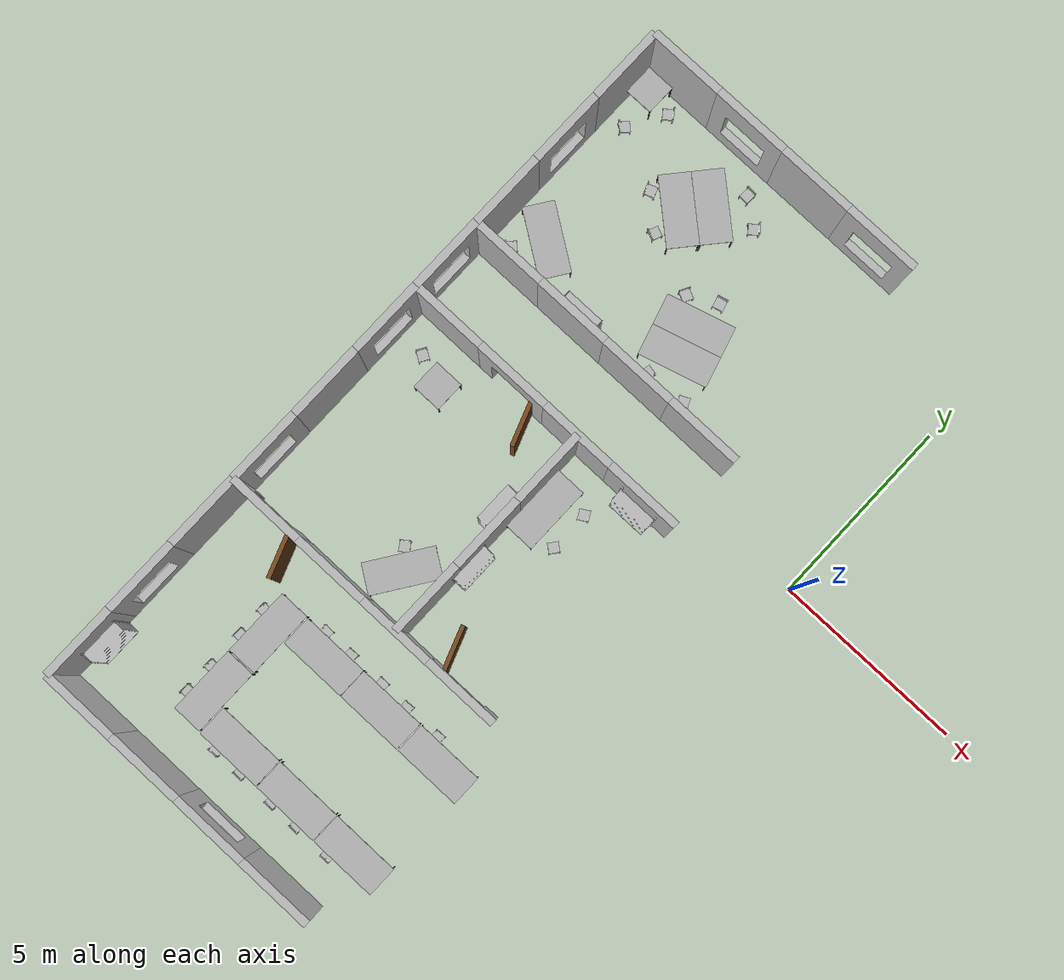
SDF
<sdf version="1.6">
 <world name="office_sim">
  <model name="Shelves.031">
   <static>1</static>
   <link name="Shelves">
    <collision name="collision">
     <geometry><mesh><uri>model://Shelves/Shelves.dae</uri></mesh></geometry>
    </collision>
    <visual name="vis">
     <cast_shadows>0</cast_shadows>
     <geometry><mesh><uri>model://Shelves/Shelves.dae</uri></mesh></geometry>
    </visual>
   </link>
   <pose>-3.96844 -1.13507 0 0 -0 0</pose>
  </model>
  <model name="Shelves.025">
   <static>1</static>
   <link name="Shelves">
    <collision name="collision">
     <geometry><mesh><uri>model://Shelves/Shelves.dae</uri></mesh></geometry>
    </collision>
    <visual name="vis">
     <cast_shadows>0</cast_shadows>
     <geometry><mesh><uri>model://Shelves/Shelves.dae</uri></mesh></geometry>
    </visual>
   </link>
   <pose>-7.96844 1.14421 0 0 -0 -3.14159</pose>
  </model>
  <model name="Shelves.016">
   <static>1</static>
   <link name="Shelves">
    <collision name="collision">
     <geometry><mesh><uri>model://Shelves/Shelves.dae</uri></mesh></geometry>
    </collision>
    <visual name="vis">
     <cast_shadows>0</cast_shadows>
     <geometry><mesh><uri>model://Shelves/Shelves.dae</uri></mesh></geometry>
    </visual>
   </link>
   <pose>-6.16844 -3.34184 0 0 -0 -1.5708</pose>
  </model>
  <model name="Shelves.010">
   <static>1</static>
   <link name="Shelves">
    <collision name="collision">
     <geometry><mesh><uri>model://Shelves/Shelves.dae</uri></mesh></geometry>
    </collision>
    <visual name="vis">
     <cast_shadows>0</cast_shadows>
     <geometry><mesh><uri>model://Shelves/Shelves.dae</uri></mesh></geometry>
    </visual>
   </link>
   <pose>-5.89665 -4.74184 0 0 -0 1.5708</pose>
  </model>
  <model name="Shelves.008">
   <static>1</static>
   <link name="Shelves">
    <collision name="collision">
     <geometry><mesh><uri>model://Shelves/Shelves.dae</uri></mesh></geometry>
    </collision>
    <visual name="vis">
     <cast_shadows>0</cast_shadows>
     <geometry><mesh><uri>model://Shelves/Shelves.dae</uri></mesh></geometry>
    </visual>
   </link>
   <pose>-10.8966 -11.7418 0 0 -0 1.5708</pose>
  </model>
  <model name="DoorOpen.008">
   <static>1</static>
   <link name="DoorOpen">
    <collision name="collision">
     <geometry><mesh><uri>model://DoorOpen/DoorOpen.dae</uri></mesh></geometry>
    </collision>
    <visual name="vis">
     <cast_shadows>0</cast_shadows>
     <geometry><mesh><uri>model://DoorOpen/DoorOpen.dae</uri></mesh></geometry>
    </visual>
   </link>
   <pose>-10 -7 0 0 -0 3.14159</pose>
  </model>
  <model name="DoorOpen.007">
   <static>1</static>
   <link name="DoorOpen">
    <collision name="collision">
     <geometry><mesh><uri>model://DoorOpen/DoorOpen.dae</uri></mesh></geometry>
    </collision>
    <visual name="vis">
     <cast_shadows>0</cast_shadows>
     <geometry><mesh><uri>model://DoorOpen/DoorOpen.dae</uri></mesh></geometry>
    </visual>
   </link>
   <pose>-8 -1 0 0 -0 3.14159</pose>
  </model>
  <model name="DoorOpen.001">
   <static>1</static>
   <link name="DoorOpen">
    <collision name="collision">
     <geometry><mesh><uri>model://DoorOpen/DoorOpen.dae</uri></mesh></geometry>
    </collision>
    <visual name="vis">
     <cast_shadows>0</cast_shadows>
     <geometry><mesh><uri>model://DoorOpen/DoorOpen.dae</uri></mesh></geometry>
    </visual>
   </link>
   <pose>-4 -7 0 0 -0 0</pose>
  </model>
  <model name="chair.076">
   <static>1</static>
   <link name="Chair">
    <collision name="collision"><geometry><mesh><uri>model://Chair/Chair.dae</uri></mesh></geometry></collision>
    <visual name="vis">
     <cast_shadows>0</cast_shadows>
     <geometry><mesh><uri>model://Chair/Chair.dae</uri></mesh></geometry>
    </visual>
   </link>
   <pose>-9.85611 6.46121 0 0 0 -0.949062</pose>
  </model>
  <model name="chair.075">
   <static>1</static>
   <link name="Chair">
    <collision name="collision"><geometry><mesh><uri>model://Chair/Chair.dae</uri></mesh></geometry></collision>
    <visual name="vis">
     <cast_shadows>0</cast_shadows>
     <geometry><mesh><uri>model://Chair/Chair.dae</uri></mesh></geometry>
    </visual>
   </link>
   <pose>-10.422 5.51803 0 0 -0 2.39536</pose>
  </model>
  <model name="chair.074">
   <static>1</static>
   <link name="Chair">
    <collision name="collision"><geometry><mesh><uri>model://Chair/Chair.dae</uri></mesh></geometry></collision>
    <visual name="vis">
     <cast_shadows>0</cast_shadows>
     <geometry><mesh><uri>model://Chair/Chair.dae</uri></mesh></geometry>
    </visual>
   </link>
   <pose>-10.422 1.51803 0 0 -0 2.39536</pose>
  </model>
  <model name="chair.073">
   <static>1</static>
   <link name="Chair">
    <collision name="collision"><geometry><mesh><uri>model://Chair/Chair.dae</uri></mesh></geometry></collision>
    <visual name="vis">
     <cast_shadows>0</cast_shadows>
     <geometry><mesh><uri>model://Chair/Chair.dae</uri></mesh></geometry>
    </visual>
   </link>
   <pose>-8.89406 4.80098 0 0 -0 1.91933</pose>
  </model>
  <model name="chair.072">
   <static>1</static>
   <link name="Chair">
    <collision name="collision"><geometry><mesh><uri>model://Chair/Chair.dae</uri></mesh></geometry></collision>
    <visual name="vis">
     <cast_shadows>0</cast_shadows>
     <geometry><mesh><uri>model://Chair/Chair.dae</uri></mesh></geometry>
    </visual>
   </link>
   <pose>-8.12065 4.10302 0 0 -0 2.75264</pose>
  </model>
  <model name="chair.071">
   <static>1</static>
   <link name="Chair">
    <collision name="collision"><geometry><mesh><uri>model://Chair/Chair.dae</uri></mesh></geometry></collision>
    <visual name="vis">
     <cast_shadows>0</cast_shadows>
     <geometry><mesh><uri>model://Chair/Chair.dae</uri></mesh></geometry>
    </visual>
   </link>
   <pose>-7.11295 6.28751 0 0 0 -0.039891</pose>
  </model>
  <model name="chair.070">
   <static>1</static>
   <link name="Chair">
    <collision name="collision"><geometry><mesh><uri>model://Chair/Chair.dae</uri></mesh></geometry></collision>
    <visual name="vis">
     <cast_shadows>0</cast_shadows>
     <geometry><mesh><uri>model://Chair/Chair.dae</uri></mesh></geometry>
    </visual>
   </link>
   <pose>-6.44881 5.78649 0 0 0 -0.873194</pose>
  </model>
  <model name="chair.069">
   <static>1</static>
   <link name="Chair">
    <collision name="collision"><geometry><mesh><uri>model://Chair/Chair.dae</uri></mesh></geometry></collision>
    <visual name="vis">
     <cast_shadows>0</cast_shadows>
     <geometry><mesh><uri>model://Chair/Chair.dae</uri></mesh></geometry>
    </visual>
   </link>
   <pose>-4.85922 1.56113 0 0 0 -2.73033</pose>
  </model>
  <model name="chair.068">
   <static>1</static>
   <link name="Chair">
    <collision name="collision"><geometry><mesh><uri>model://Chair/Chair.dae</uri></mesh></geometry></collision>
    <visual name="vis">
     <cast_shadows>0</cast_shadows>
     <geometry><mesh><uri>model://Chair/Chair.dae</uri></mesh></geometry>
    </visual>
   </link>
   <pose>-5.95773 1.50503 0 0 -0 2.92372</pose>
  </model>
  <model name="chair.067">
   <static>1</static>
   <link name="Chair">
    <collision name="collision"><geometry><mesh><uri>model://Chair/Chair.dae</uri></mesh></geometry></collision>
    <visual name="vis">
     <cast_shadows>0</cast_shadows>
     <geometry><mesh><uri>model://Chair/Chair.dae</uri></mesh></geometry>
    </visual>
   </link>
   <pose>-5.81634 3.89299 0 0 -0 0.26127</pose>
  </model>
  <model name="chair.066">
   <static>1</static>
   <link name="Chair">
    <collision name="collision"><geometry><mesh><uri>model://Chair/Chair.dae</uri></mesh></geometry></collision>
    <visual name="vis">
     <cast_shadows>0</cast_shadows>
     <geometry><mesh><uri>model://Chair/Chair.dae</uri></mesh></geometry>
    </visual>
   </link>
   <pose>-6.5511 3.50282 0 0 -0 1.09457</pose>
  </model>
  <model name="chair.056">
   <static>1</static>
   <link name="Chair">
    <collision name="collision"><geometry><mesh><uri>model://Chair/Chair.dae</uri></mesh></geometry></collision>
    <visual name="vis">
     <cast_shadows>0</cast_shadows>
     <geometry><mesh><uri>model://Chair/Chair.dae</uri></mesh></geometry>
    </visual>
   </link>
   <pose>-10.1681 -1.84678 0 0 -0 1.03445</pose>
  </model>
  <model name="chair.055">
   <static>1</static>
   <link name="Chair">
    <collision name="collision"><geometry><mesh><uri>model://Chair/Chair.dae</uri></mesh></geometry></collision>
    <visual name="vis">
     <cast_shadows>0</cast_shadows>
     <geometry><mesh><uri>model://Chair/Chair.dae</uri></mesh></geometry>
    </visual>
   </link>
   <pose>-7.35992 -5.45733 0 0 -0 0.598117</pose>
  </model>
  <model name="chair.054">
   <static>1</static>
   <link name="Chair">
    <collision name="collision"><geometry><mesh><uri>model://Chair/Chair.dae</uri></mesh></geometry></collision>
    <visual name="vis">
     <cast_shadows>0</cast_shadows>
     <geometry><mesh><uri>model://Chair/Chair.dae</uri></mesh></geometry>
    </visual>
   </link>
   <pose>-4.7587 -3.08711 0 0 0 -2.22892</pose>
  </model>
  <model name="chair.053">
   <static>1</static>
   <link name="Chair">
    <collision name="collision"><geometry><mesh><uri>model://Chair/Chair.dae</uri></mesh></geometry></collision>
    <visual name="vis">
     <cast_shadows>0</cast_shadows>
     <geometry><mesh><uri>model://Chair/Chair.dae</uri></mesh></geometry>
    </visual>
   </link>
   <pose>-4.7587 -2.03075 0 0 0 -1.07227</pose>
  </model>
  <model name="chair.016">
   <static>1</static>
   <link name="Chair">
    <collision name="collision"><geometry><mesh><uri>model://Chair/Chair.dae</uri></mesh></geometry></collision>
    <visual name="vis">
     <cast_shadows>0</cast_shadows>
     <geometry><mesh><uri>model://Chair/Chair.dae</uri></mesh></geometry>
    </visual>
   </link>
   <pose>-8.72484 -10.6088 0 0 -0 1.5708</pose>
  </model>
  <model name="chair.015">
   <static>1</static>
   <link name="Chair">
    <collision name="collision"><geometry><mesh><uri>model://Chair/Chair.dae</uri></mesh></geometry></collision>
    <visual name="vis">
     <cast_shadows>0</cast_shadows>
     <geometry><mesh><uri>model://Chair/Chair.dae</uri></mesh></geometry>
    </visual>
   </link>
   <pose>-8.72484 -11.4088 0 0 -0 1.5708</pose>
  </model>
  <model name="chair.014">
   <static>1</static>
   <link name="Chair">
    <collision name="collision"><geometry><mesh><uri>model://Chair/Chair.dae</uri></mesh></geometry></collision>
    <visual name="vis">
     <cast_shadows>0</cast_shadows>
     <geometry><mesh><uri>model://Chair/Chair.dae</uri></mesh></geometry>
    </visual>
   </link>
   <pose>-8.72484 -9.60884 0 0 -0 1.5708</pose>
  </model>
  <model name="chair.013">
   <static>1</static>
   <link name="Chair">
    <collision name="collision"><geometry><mesh><uri>model://Chair/Chair.dae</uri></mesh></geometry></collision>
    <visual name="vis">
     <cast_shadows>0</cast_shadows>
     <geometry><mesh><uri>model://Chair/Chair.dae</uri></mesh></geometry>
    </visual>
   </link>
   <pose>-8.72484 -8.80884 0 0 -0 1.5708</pose>
  </model>
  <model name="chair.012">
   <static>1</static>
   <link name="Chair">
    <collision name="collision"><geometry><mesh><uri>model://Chair/Chair.dae</uri></mesh></geometry></collision>
    <visual name="vis">
     <cast_shadows>0</cast_shadows>
     <geometry><mesh><uri>model://Chair/Chair.dae</uri></mesh></geometry>
    </visual>
   </link>
   <pose>-7.32484 -11.9088 0 0 0 -3.14159</pose>
  </model>
  <model name="chair.011">
   <static>1</static>
   <link name="Chair">
    <collision name="collision"><geometry><mesh><uri>model://Chair/Chair.dae</uri></mesh></geometry></collision>
    <visual name="vis">
     <cast_shadows>0</cast_shadows>
     <geometry><mesh><uri>model://Chair/Chair.dae</uri></mesh></geometry>
    </visual>
   </link>
   <pose>-6.52484 -11.9088 0 0 0 -3.14159</pose>
  </model>
  <model name="chair.010">
   <static>1</static>
   <link name="Chair">
    <collision name="collision"><geometry><mesh><uri>model://Chair/Chair.dae</uri></mesh></geometry></collision>
    <visual name="vis">
     <cast_shadows>0</cast_shadows>
     <geometry><mesh><uri>model://Chair/Chair.dae</uri></mesh></geometry>
    </visual>
   </link>
   <pose>-4.72484 -11.9088 0 0 0 -3.14159</pose>
  </model>
  <model name="chair.009">
   <static>1</static>
   <link name="Chair">
    <collision name="collision"><geometry><mesh><uri>model://Chair/Chair.dae</uri></mesh></geometry></collision>
    <visual name="vis">
     <cast_shadows>0</cast_shadows>
     <geometry><mesh><uri>model://Chair/Chair.dae</uri></mesh></geometry>
    </visual>
   </link>
   <pose>-5.52484 -11.9088 0 0 0 -3.14159</pose>
  </model>
  <model name="chair.008">
   <static>1</static>
   <link name="Chair">
    <collision name="collision"><geometry><mesh><uri>model://Chair/Chair.dae</uri></mesh></geometry></collision>
    <visual name="vis">
     <cast_shadows>0</cast_shadows>
     <geometry><mesh><uri>model://Chair/Chair.dae</uri></mesh></geometry>
    </visual>
   </link>
   <pose>-3.72484 -11.9088 0 0 0 -3.14159</pose>
  </model>
  <model name="chair.006">
   <static>1</static>
   <link name="Chair">
    <collision name="collision"><geometry><mesh><uri>model://Chair/Chair.dae</uri></mesh></geometry></collision>
    <visual name="vis">
     <cast_shadows>0</cast_shadows>
     <geometry><mesh><uri>model://Chair/Chair.dae</uri></mesh></geometry>
    </visual>
   </link>
   <pose>-7.32484 -8.20884 0 0 -0 0</pose>
  </model>
  <model name="chair.005">
   <static>1</static>
   <link name="Chair">
    <collision name="collision"><geometry><mesh><uri>model://Chair/Chair.dae</uri></mesh></geometry></collision>
    <visual name="vis">
     <cast_shadows>0</cast_shadows>
     <geometry><mesh><uri>model://Chair/Chair.dae</uri></mesh></geometry>
    </visual>
   </link>
   <pose>-6.52484 -8.20884 0 0 -0 0</pose>
  </model>
  <model name="chair.004">
   <static>1</static>
   <link name="Chair">
    <collision name="collision"><geometry><mesh><uri>model://Chair/Chair.dae</uri></mesh></geometry></collision>
    <visual name="vis">
     <cast_shadows>0</cast_shadows>
     <geometry><mesh><uri>model://Chair/Chair.dae</uri></mesh></geometry>
    </visual>
   </link>
   <pose>-4.72484 -8.20884 0 0 -0 0</pose>
  </model>
  <model name="chair.003">
   <static>1</static>
   <link name="Chair">
    <collision name="collision"><geometry><mesh><uri>model://Chair/Chair.dae</uri></mesh></geometry></collision>
    <visual name="vis">
     <cast_shadows>0</cast_shadows>
     <geometry><mesh><uri>model://Chair/Chair.dae</uri></mesh></geometry>
    </visual>
   </link>
   <pose>-5.52484 -8.20884 0 0 -0 0</pose>
  </model>
  <model name="chair.002">
   <static>1</static>
   <link name="Chair">
    <collision name="collision"><geometry><mesh><uri>model://Chair/Chair.dae</uri></mesh></geometry></collision>
    <visual name="vis">
     <cast_shadows>0</cast_shadows>
     <geometry><mesh><uri>model://Chair/Chair.dae</uri></mesh></geometry>
    </visual>
   </link>
   <pose>-3.72484 -8.20884 0 0 -0 0</pose>
  </model>
  <model name="SmallTable.005">
   <static>1</static>
   <link name="SmallTable">
    <collision name="collision">
     <geometry><mesh><uri>model://SmallTable/SmallTable.dae</uri></mesh></geometry>
    </collision>
    <visual name="vis">
     <cast_shadows>0</cast_shadows>
     <geometry><mesh><uri>model://SmallTable/SmallTable.dae</uri></mesh></geometry>
    </visual>
   </link>
   <pose>-9.35179 -2.1725 0 0 -0 0</pose>
  </model>
  <model name="SmallTable.004">
   <static>1</static>
   <link name="SmallTable">
    <collision name="collision">
     <geometry><mesh><uri>model://SmallTable/SmallTable.dae</uri></mesh></geometry>
    </collision>
    <visual name="vis">
     <cast_shadows>0</cast_shadows>
     <geometry><mesh><uri>model://SmallTable/SmallTable.dae</uri></mesh></geometry>
    </visual>
   </link>
   <pose>-10.5502 6.49603 0 0 -0 0</pose>
  </model>
  <model name="BigTable.030">
   <static>1</static>
   <link name="BigTable">
    <collision name="collision">
     <geometry><mesh><uri>model://BigTable/BigTable.dae</uri></mesh></geometry>
    </collision>
    <visual name="vis">
     <cast_shadows>0</cast_shadows>
     <geometry><mesh><uri>model://BigTable/BigTable.dae</uri></mesh></geometry>
    </visual>
   </link>
   <pose>-5.8882 3.01611 0 0 -0 0.281279</pose>
  </model>
  <model name="BigTable.029">
   <static>1</static>
   <link name="BigTable">
    <collision name="collision">
     <geometry><mesh><uri>model://BigTable/BigTable.dae</uri></mesh></geometry>
    </collision>
    <visual name="vis">
     <cast_shadows>0</cast_shadows>
     <geometry><mesh><uri>model://BigTable/BigTable.dae</uri></mesh></geometry>
    </visual>
   </link>
   <pose>-5.66613 2.24755 0 0 -0 0.281279</pose>
  </model>
  <model name="BigTable.028">
   <static>1</static>
   <link name="BigTable">
    <collision name="collision">
     <geometry><mesh><uri>model://BigTable/BigTable.dae</uri></mesh></geometry>
    </collision>
    <visual name="vis">
     <cast_shadows>0</cast_shadows>
     <geometry><mesh><uri>model://BigTable/BigTable.dae</uri></mesh></geometry>
    </visual>
   </link>
   <pose>-8.04044 4.81171 0 0 0 -0.712005</pose>
  </model>
  <model name="BigTable.027">
   <static>1</static>
   <link name="BigTable">
    <collision name="collision">
     <geometry><mesh><uri>model://BigTable/BigTable.dae</uri></mesh></geometry>
    </collision>
    <visual name="vis">
     <cast_shadows>0</cast_shadows>
     <geometry><mesh><uri>model://BigTable/BigTable.dae</uri></mesh></geometry>
    </visual>
   </link>
   <pose>-7.51776 5.41736 0 0 0 -0.712005</pose>
  </model>
  <model name="BigTable.024">
   <static>1</static>
   <link name="BigTable">
    <collision name="collision">
     <geometry><mesh><uri>model://BigTable/BigTable.dae</uri></mesh></geometry>
    </collision>
    <visual name="vis">
     <cast_shadows>0</cast_shadows>
     <geometry><mesh><uri>model://BigTable/BigTable.dae</uri></mesh></geometry>
    </visual>
   </link>
   <pose>-9.84713 2.14362 0 0 0 -0.593559</pose>
  </model>
  <model name="BigTable.023">
   <static>1</static>
   <link name="BigTable">
    <collision name="collision">
     <geometry><mesh><uri>model://BigTable/BigTable.dae</uri></mesh></geometry>
    </collision>
    <visual name="vis">
     <cast_shadows>0</cast_shadows>
     <geometry><mesh><uri>model://BigTable/BigTable.dae</uri></mesh></geometry>
    </visual>
   </link>
   <pose>-6.97501 -5.92275 0 0 -0 0.977237</pose>
  </model>
  <model name="BigTable.022">
   <static>1</static>
   <link name="BigTable">
    <collision name="collision">
     <geometry><mesh><uri>model://BigTable/BigTable.dae</uri></mesh></geometry>
    </collision>
    <visual name="vis">
     <cast_shadows>0</cast_shadows>
     <geometry><mesh><uri>model://BigTable/BigTable.dae</uri></mesh></geometry>
    </visual>
   </link>
   <pose>-5.11875 -8.62644 0 0 -0 0</pose>
  </model>
  <model name="BigTable.021">
   <static>1</static>
   <link name="BigTable">
    <collision name="collision">
     <geometry><mesh><uri>model://BigTable/BigTable.dae</uri></mesh></geometry>
    </collision>
    <visual name="vis">
     <cast_shadows>0</cast_shadows>
     <geometry><mesh><uri>model://BigTable/BigTable.dae</uri></mesh></geometry>
    </visual>
   </link>
   <pose>-3.28227 -8.62644 0 0 -0 0</pose>
  </model>
  <model name="BigTable.020">
   <static>1</static>
   <link name="BigTable">
    <collision name="collision">
     <geometry><mesh><uri>model://BigTable/BigTable.dae</uri></mesh></geometry>
    </collision>
    <visual name="vis">
     <cast_shadows>0</cast_shadows>
     <geometry><mesh><uri>model://BigTable/BigTable.dae</uri></mesh></geometry>
    </visual>
   </link>
   <pose>-6.92803 -8.62644 0 0 -0 0</pose>
  </model>
  <model name="BigTable.019">
   <static>1</static>
   <link name="BigTable">
    <collision name="collision">
     <geometry><mesh><uri>model://BigTable/BigTable.dae</uri></mesh></geometry>
    </collision>
    <visual name="vis">
     <cast_shadows>0</cast_shadows>
     <geometry><mesh><uri>model://BigTable/BigTable.dae</uri></mesh></geometry>
    </visual>
   </link>
   <pose>-5.10343 -11.4719 0 0 -0 0</pose>
  </model>
  <model name="BigTable.018">
   <static>1</static>
   <link name="BigTable">
    <collision name="collision">
     <geometry><mesh><uri>model://BigTable/BigTable.dae</uri></mesh></geometry>
    </collision>
    <visual name="vis">
     <cast_shadows>0</cast_shadows>
     <geometry><mesh><uri>model://BigTable/BigTable.dae</uri></mesh></geometry>
    </visual>
   </link>
   <pose>-6.92803 -11.4719 0 0 -0 0</pose>
  </model>
  <model name="BigTable.017">
   <static>1</static>
   <link name="BigTable">
    <collision name="collision">
     <geometry><mesh><uri>model://BigTable/BigTable.dae</uri></mesh></geometry>
    </collision>
    <visual name="vis">
     <cast_shadows>0</cast_shadows>
     <geometry><mesh><uri>model://BigTable/BigTable.dae</uri></mesh></geometry>
    </visual>
   </link>
   <pose>-3.28227 -11.4719 0 0 -0 0</pose>
  </model>
  <model name="BigTable.016">
   <static>1</static>
   <link name="BigTable">
    <collision name="collision">
     <geometry><mesh><uri>model://BigTable/BigTable.dae</uri></mesh></geometry>
    </collision>
    <visual name="vis">
     <cast_shadows>0</cast_shadows>
     <geometry><mesh><uri>model://BigTable/BigTable.dae</uri></mesh></geometry>
    </visual>
   </link>
   <pose>-8.26134 -10.9501 0 0 0 -1.5708</pose>
  </model>
  <model name="BigTable.015">
   <static>1</static>
   <link name="BigTable">
    <collision name="collision">
     <geometry><mesh><uri>model://BigTable/BigTable.dae</uri></mesh></geometry>
    </collision>
    <visual name="vis">
     <cast_shadows>0</cast_shadows>
     <geometry><mesh><uri>model://BigTable/BigTable.dae</uri></mesh></geometry>
    </visual>
   </link>
   <pose>-8.26134 -9.11441 0 0 0 -1.5708</pose>
  </model>
  <model name="BigTable.004">
   <static>1</static>
   <link name="BigTable">
    <collision name="collision">
     <geometry><mesh><uri>model://BigTable/BigTable.dae</uri></mesh></geometry>
    </collision>
    <visual name="vis">
     <cast_shadows>0</cast_shadows>
     <geometry><mesh><uri>model://BigTable/BigTable.dae</uri></mesh></geometry>
    </visual>
   </link>
   <pose>-5.50796 -2.59257 0 0 0 -1.5708</pose>
  </model>
  <model name="WindowTile.019">
   <static>1</static>
   <link name="WindowTile">
    <collision name="collision">
     <geometry><mesh><uri>model://WindowTile/WindowTile.dae</uri></mesh></geometry>
    </collision>
    <visual name="vis">
     <cast_shadows>0</cast_shadows>
     <geometry><mesh><uri>model://WindowTile/WindowTile.dae</uri></mesh></geometry>
     <material>
      <script><uri>file://Media/materials/scripts/iai-office.material</uri><name>IAI/OfficeWall</name></script>
     </material>
    </visual>
   </link>
   <pose>-6 -13 0 0 -0 0</pose>
  </model>
  <model name="WindowTile.015">
   <static>1</static>
   <link name="WindowTile">
    <collision name="collision">
     <geometry><mesh><uri>model://WindowTile/WindowTile.dae</uri></mesh></geometry>
    </collision>
    <visual name="vis">
     <cast_shadows>0</cast_shadows>
     <geometry><mesh><uri>model://WindowTile/WindowTile.dae</uri></mesh></geometry>
     <material>
      <script><uri>file://Media/materials/scripts/iai-office.material</uri><name>IAI/OfficeWall</name></script>
     </material>
    </visual>
   </link>
   <pose>-11 -10 0 0 0 -1.5708</pose>
  </model>
  <model name="WindowTile.014">
   <static>1</static>
   <link name="WindowTile">
    <collision name="collision">
     <geometry><mesh><uri>model://WindowTile/WindowTile.dae</uri></mesh></geometry>
    </collision>
    <visual name="vis">
     <cast_shadows>0</cast_shadows>
     <geometry><mesh><uri>model://WindowTile/WindowTile.dae</uri></mesh></geometry>
     <material>
      <script><uri>file://Media/materials/scripts/iai-office.material</uri><name>IAI/OfficeWall</name></script>
     </material>
    </visual>
   </link>
   <pose>-11 -6 0 0 0 -1.5708</pose>
  </model>
  <model name="WindowTile.013">
   <static>1</static>
   <link name="WindowTile">
    <collision name="collision">
     <geometry><mesh><uri>model://WindowTile/WindowTile.dae</uri></mesh></geometry>
    </collision>
    <visual name="vis">
     <cast_shadows>0</cast_shadows>
     <geometry><mesh><uri>model://WindowTile/WindowTile.dae</uri></mesh></geometry>
     <material>
      <script><uri>file://Media/materials/scripts/iai-office.material</uri><name>IAI/OfficeWall</name></script>
     </material>
    </visual>
   </link>
   <pose>-11 -2 0 0 0 -1.5708</pose>
  </model>
  <model name="WindowTile.012">
   <static>1</static>
   <link name="WindowTile">
    <collision name="collision">
     <geometry><mesh><uri>model://WindowTile/WindowTile.dae</uri></mesh></geometry>
    </collision>
    <visual name="vis">
     <cast_shadows>0</cast_shadows>
     <geometry><mesh><uri>model://WindowTile/WindowTile.dae</uri></mesh></geometry>
     <material>
      <script><uri>file://Media/materials/scripts/iai-office.material</uri><name>IAI/OfficeWall</name></script>
     </material>
    </visual>
   </link>
   <pose>-11 0 0 0 0 -1.5708</pose>
  </model>
  <model name="WindowTile.003">
   <static>1</static>
   <link name="WindowTile">
    <collision name="collision">
     <geometry><mesh><uri>model://WindowTile/WindowTile.dae</uri></mesh></geometry>
    </collision>
    <visual name="vis">
     <cast_shadows>0</cast_shadows>
     <geometry><mesh><uri>model://WindowTile/WindowTile.dae</uri></mesh></geometry>
     <material>
      <script><uri>file://Media/materials/scripts/iai-office.material</uri><name>IAI/OfficeWall</name></script>
     </material>
    </visual>
   </link>
   <pose>-11 4 0 0 0 -1.5708</pose>
  </model>
  <model name="WallTile.070">
   <static>1</static>
   <link name="WallTile">
    <collision name="collision">
     <geometry><mesh><uri>model://WallTile/WallTile.dae</uri></mesh></geometry>
    </collision>
    <visual name="vis">
     <cast_shadows>0</cast_shadows>
     <geometry><mesh><uri>model://WallTile/WallTile.dae</uri></mesh></geometry>
     <material>
      <script><uri>file://Media/materials/scripts/iai-office.material</uri><name>IAI/OfficeWall</name></script>
     </material>
    </visual>
   </link>
   <pose>-6 -7 0 0 -0 3.14159</pose>
  </model>
  <model name="WallTile.069">
   <static>1</static>
   <link name="WallTile">
    <collision name="collision">
     <geometry><mesh><uri>model://WallTile/WallTile.dae</uri></mesh></geometry>
    </collision>
    <visual name="vis">
     <cast_shadows>0</cast_shadows>
     <geometry><mesh><uri>model://WallTile/WallTile.dae</uri></mesh></geometry>
     <material>
      <script><uri>file://Media/materials/scripts/iai-office.material</uri><name>IAI/OfficeWall</name></script>
     </material>
    </visual>
   </link>
   <pose>-8 -7 0 0 -0 3.14159</pose>
  </model>
  <model name="DoorTile.009">
   <static>1</static>
   <link name="DoorTile">
    <collision name="collision">
     <geometry><mesh><uri>model://DoorTile/DoorTile.dae</uri></mesh></geometry>
    </collision>
    <visual name="vis">
     <cast_shadows>0</cast_shadows>
     <geometry><mesh><uri>model://DoorTile/DoorTile.dae</uri></mesh></geometry>
     <material>
      <script><uri>file://Media/materials/scripts/iai-office.material</uri><name>IAI/OfficeWall</name></script>
     </material>
    </visual>
   </link>
   <pose>-4 -7 0 0 -0 0</pose>
  </model>
  <model name="DoorTile.008">
   <static>1</static>
   <link name="DoorTile">
    <collision name="collision">
     <geometry><mesh><uri>model://DoorTile/DoorTile.dae</uri></mesh></geometry>
    </collision>
    <visual name="vis">
     <cast_shadows>0</cast_shadows>
     <geometry><mesh><uri>model://DoorTile/DoorTile.dae</uri></mesh></geometry>
     <material>
      <script><uri>file://Media/materials/scripts/iai-office.material</uri><name>IAI/OfficeWall</name></script>
     </material>
    </visual>
   </link>
   <pose>-10 -7 0 0 -0 0</pose>
  </model>
  <model name="WallTile.064">
   <static>1</static>
   <link name="WallTile">
    <collision name="collision">
     <geometry><mesh><uri>model://WallTile/WallTile.dae</uri></mesh></geometry>
    </collision>
    <visual name="vis">
     <cast_shadows>0</cast_shadows>
     <geometry><mesh><uri>model://WallTile/WallTile.dae</uri></mesh></geometry>
     <material>
      <script><uri>file://Media/materials/scripts/iai-office.material</uri><name>IAI/OfficeWall</name></script>
     </material>
    </visual>
   </link>
   <pose>-6 -6 0 0 -0 1.5708</pose>
  </model>
  <model name="WallTile.063">
   <static>1</static>
   <link name="WallTile">
    <collision name="collision">
     <geometry><mesh><uri>model://WallTile/WallTile.dae</uri></mesh></geometry>
    </collision>
    <visual name="vis">
     <cast_shadows>0</cast_shadows>
     <geometry><mesh><uri>model://WallTile/WallTile.dae</uri></mesh></geometry>
     <material>
      <script><uri>file://Media/materials/scripts/iai-office.material</uri><name>IAI/OfficeWall</name></script>
     </material>
    </visual>
   </link>
   <pose>-6 -4 0 0 -0 1.5708</pose>
  </model>
  <model name="WallTile.021">
   <static>1</static>
   <link name="WallTile">
    <collision name="collision">
     <geometry><mesh><uri>model://WallTile/WallTile.dae</uri></mesh></geometry>
    </collision>
    <visual name="vis">
     <cast_shadows>0</cast_shadows>
     <geometry><mesh><uri>model://WallTile/WallTile.dae</uri></mesh></geometry>
     <material>
      <script><uri>file://Media/materials/scripts/iai-office.material</uri><name>IAI/OfficeWall</name></script>
     </material>
    </visual>
   </link>
   <pose>-6 -2 0 0 -0 1.5708</pose>
  </model>
  <model name="DoorTile.007">
   <static>1</static>
   <link name="DoorTile">
    <collision name="collision">
     <geometry><mesh><uri>model://DoorTile/DoorTile.dae</uri></mesh></geometry>
    </collision>
    <visual name="vis">
     <cast_shadows>0</cast_shadows>
     <geometry><mesh><uri>model://DoorTile/DoorTile.dae</uri></mesh></geometry>
     <material>
      <script><uri>file://Media/materials/scripts/iai-office.material</uri><name>IAI/OfficeWall</name></script>
     </material>
    </visual>
   </link>
   <pose>-8 -1 0 0 -0 0</pose>
  </model>
  <model name="WallTile.036">
   <static>1</static>
   <link name="WallTile">
    <collision name="collision">
     <geometry><mesh><uri>model://WallTile/WallTile.dae</uri></mesh></geometry>
    </collision>
    <visual name="vis">
     <cast_shadows>0</cast_shadows>
     <geometry><mesh><uri>model://WallTile/WallTile.dae</uri></mesh></geometry>
     <material>
      <script><uri>file://Media/materials/scripts/iai-office.material</uri><name>IAI/OfficeWall</name></script>
     </material>
    </visual>
   </link>
   <pose>-10 -1 0 0 -0 3.14159</pose>
  </model>
  <model name="WallTile.031">
   <static>1</static>
   <link name="WallTile">
    <collision name="collision">
     <geometry><mesh><uri>model://WallTile/WallTile.dae</uri></mesh></geometry>
    </collision>
    <visual name="vis">
     <cast_shadows>0</cast_shadows>
     <geometry><mesh><uri>model://WallTile/WallTile.dae</uri></mesh></geometry>
     <material>
      <script><uri>file://Media/materials/scripts/iai-office.material</uri><name>IAI/OfficeWall</name></script>
     </material>
    </visual>
   </link>
   <pose>-6 -1 0 0 -0 3.14159</pose>
  </model>
  <model name="WallTile.028">
   <static>1</static>
   <link name="WallTile">
    <collision name="collision">
     <geometry><mesh><uri>model://WallTile/WallTile.dae</uri></mesh></geometry>
    </collision>
    <visual name="vis">
     <cast_shadows>0</cast_shadows>
     <geometry><mesh><uri>model://WallTile/WallTile.dae</uri></mesh></geometry>
     <material>
      <script><uri>file://Media/materials/scripts/iai-office.material</uri><name>IAI/OfficeWall</name></script>
     </material>
    </visual>
   </link>
   <pose>-4 -1 0 0 -0 3.14159</pose>
  </model>
  <model name="WallTile.060">
   <static>1</static>
   <link name="WallTile">
    <collision name="collision">
     <geometry><mesh><uri>model://WallTile/WallTile.dae</uri></mesh></geometry>
    </collision>
    <visual name="vis">
     <cast_shadows>0</cast_shadows>
     <geometry><mesh><uri>model://WallTile/WallTile.dae</uri></mesh></geometry>
     <material>
      <script><uri>file://Media/materials/scripts/iai-office.material</uri><name>IAI/OfficeWall</name></script>
     </material>
    </visual>
   </link>
   <pose>-8 1 0 0 -0 3.14159</pose>
  </model>
  <model name="WallTile.059">
   <static>1</static>
   <link name="WallTile">
    <collision name="collision">
     <geometry><mesh><uri>model://WallTile/WallTile.dae</uri></mesh></geometry>
    </collision>
    <visual name="vis">
     <cast_shadows>0</cast_shadows>
     <geometry><mesh><uri>model://WallTile/WallTile.dae</uri></mesh></geometry>
     <material>
      <script><uri>file://Media/materials/scripts/iai-office.material</uri><name>IAI/OfficeWall</name></script>
     </material>
    </visual>
   </link>
   <pose>-4 1 0 0 -0 3.14159</pose>
  </model>
  <model name="WallTile.058">
   <static>1</static>
   <link name="WallTile">
    <collision name="collision">
     <geometry><mesh><uri>model://WallTile/WallTile.dae</uri></mesh></geometry>
    </collision>
    <visual name="vis">
     <cast_shadows>0</cast_shadows>
     <geometry><mesh><uri>model://WallTile/WallTile.dae</uri></mesh></geometry>
     <material>
      <script><uri>file://Media/materials/scripts/iai-office.material</uri><name>IAI/OfficeWall</name></script>
     </material>
    </visual>
   </link>
   <pose>-6 1 0 0 -0 3.14159</pose>
  </model>
  <model name="WallTile.057">
   <static>1</static>
   <link name="WallTile">
    <collision name="collision">
     <geometry><mesh><uri>model://WallTile/WallTile.dae</uri></mesh></geometry>
    </collision>
    <visual name="vis">
     <cast_shadows>0</cast_shadows>
     <geometry><mesh><uri>model://WallTile/WallTile.dae</uri></mesh></geometry>
     <material>
      <script><uri>file://Media/materials/scripts/iai-office.material</uri><name>IAI/OfficeWall</name></script>
     </material>
    </visual>
   </link>
   <pose>-10 1 0 0 -0 3.14159</pose>
  </model>
  <model name="WallTile.056">
   <static>1</static>
   <link name="WallTile">
    <collision name="collision">
     <geometry><mesh><uri>model://WallTile/WallTile.dae</uri></mesh></geometry>
    </collision>
    <visual name="vis">
     <cast_shadows>0</cast_shadows>
     <geometry><mesh><uri>model://WallTile/WallTile.dae</uri></mesh></geometry>
     <material>
      <script><uri>file://Media/materials/scripts/iai-office.material</uri><name>IAI/OfficeWall</name></script>
     </material>
    </visual>
   </link>
   <pose>-10 7 0 0 -0 3.14159</pose>
  </model>
  <model name="WindowTile.008">
   <static>1</static>
   <link name="WindowTile">
    <collision name="collision">
     <geometry><mesh><uri>model://WindowTile/WindowTile.dae</uri></mesh></geometry>
    </collision>
    <visual name="vis">
     <cast_shadows>0</cast_shadows>
     <geometry><mesh><uri>model://WindowTile/WindowTile.dae</uri></mesh></geometry>
     <material>
      <script><uri>file://Media/materials/scripts/iai-office.material</uri><name>IAI/OfficeWall</name></script>
     </material>
    </visual>
   </link>
   <pose>-8 7 0 0 -0 0</pose>
  </model>
  <model name="WallTile.055">
   <static>1</static>
   <link name="WallTile">
    <collision name="collision">
     <geometry><mesh><uri>model://WallTile/WallTile.dae</uri></mesh></geometry>
    </collision>
    <visual name="vis">
     <cast_shadows>0</cast_shadows>
     <geometry><mesh><uri>model://WallTile/WallTile.dae</uri></mesh></geometry>
     <material>
      <script><uri>file://Media/materials/scripts/iai-office.material</uri><name>IAI/OfficeWall</name></script>
     </material>
    </visual>
   </link>
   <pose>-11 6 0 0 -0 1.5708</pose>
  </model>
  <model name="WallTile.054">
   <static>1</static>
   <link name="WallTile">
    <collision name="collision">
     <geometry><mesh><uri>model://WallTile/WallTile.dae</uri></mesh></geometry>
    </collision>
    <visual name="vis">
     <cast_shadows>0</cast_shadows>
     <geometry><mesh><uri>model://WallTile/WallTile.dae</uri></mesh></geometry>
     <material>
      <script><uri>file://Media/materials/scripts/iai-office.material</uri><name>IAI/OfficeWall</name></script>
     </material>
    </visual>
   </link>
   <pose>-11 2 0 0 -0 1.5708</pose>
  </model>
  <model name="WallTile.051">
   <static>1</static>
   <link name="WallTile">
    <collision name="collision">
     <geometry><mesh><uri>model://WallTile/WallTile.dae</uri></mesh></geometry>
    </collision>
    <visual name="vis">
     <cast_shadows>0</cast_shadows>
     <geometry><mesh><uri>model://WallTile/WallTile.dae</uri></mesh></geometry>
     <material>
      <script><uri>file://Media/materials/scripts/iai-office.material</uri><name>IAI/OfficeWall</name></script>
     </material>
    </visual>
   </link>
   <pose>-11 -4 0 0 -0 1.5708</pose>
  </model>
  <model name="WallTile.047">
   <static>1</static>
   <link name="WallTile">
    <collision name="collision">
     <geometry><mesh><uri>model://WallTile/WallTile.dae</uri></mesh></geometry>
    </collision>
    <visual name="vis">
     <cast_shadows>0</cast_shadows>
     <geometry><mesh><uri>model://WallTile/WallTile.dae</uri></mesh></geometry>
     <material>
      <script><uri>file://Media/materials/scripts/iai-office.material</uri><name>IAI/OfficeWall</name></script>
     </material>
    </visual>
   </link>
   <pose>-11 -8 0 0 0 -1.5708</pose>
  </model>
  <model name="WallTile.046">
   <static>1</static>
   <link name="WallTile">
    <collision name="collision">
     <geometry><mesh><uri>model://WallTile/WallTile.dae</uri></mesh></geometry>
    </collision>
    <visual name="vis">
     <cast_shadows>0</cast_shadows>
     <geometry><mesh><uri>model://WallTile/WallTile.dae</uri></mesh></geometry>
     <material>
      <script><uri>file://Media/materials/scripts/iai-office.material</uri><name>IAI/OfficeWall</name></script>
     </material>
    </visual>
   </link>
   <pose>-11 -12 0 0 0 -1.5708</pose>
  </model>
  <model name="WallTile.043">
   <static>1</static>
   <link name="WallTile">
    <collision name="collision">
     <geometry><mesh><uri>model://WallTile/WallTile.dae</uri></mesh></geometry>
    </collision>
    <visual name="vis">
     <cast_shadows>0</cast_shadows>
     <geometry><mesh><uri>model://WallTile/WallTile.dae</uri></mesh></geometry>
     <material>
      <script><uri>file://Media/materials/scripts/iai-office.material</uri><name>IAI/OfficeWall</name></script>
     </material>
    </visual>
   </link>
   <pose>-4 -13 0 0 -0 3.14159</pose>
  </model>
  <model name="WallTile.042">
   <static>1</static>
   <link name="WallTile">
    <collision name="collision">
     <geometry><mesh><uri>model://WallTile/WallTile.dae</uri></mesh></geometry>
    </collision>
    <visual name="vis">
     <cast_shadows>0</cast_shadows>
     <geometry><mesh><uri>model://WallTile/WallTile.dae</uri></mesh></geometry>
     <material>
      <script><uri>file://Media/materials/scripts/iai-office.material</uri><name>IAI/OfficeWall</name></script>
     </material>
    </visual>
   </link>
   <pose>-10 -13 0 0 -0 3.14159</pose>
  </model>
  <model name="WallTile.040">
   <static>1</static>
   <link name="WallTile">
    <collision name="collision">
     <geometry><mesh><uri>model://WallTile/WallTile.dae</uri></mesh></geometry>
    </collision>
    <visual name="vis">
     <cast_shadows>0</cast_shadows>
     <geometry><mesh><uri>model://WallTile/WallTile.dae</uri></mesh></geometry>
     <material>
      <script><uri>file://Media/materials/scripts/iai-office.material</uri><name>IAI/OfficeWall</name></script>
     </material>
    </visual>
   </link>
   <pose>-8 -13 0 0 -0 3.14159</pose>
  </model>
  <model name="WallTile.005">
   <static>1</static>
   <link name="WallTile">
    <collision name="collision">
     <geometry><mesh><uri>model://WallTile/WallTile.dae</uri></mesh></geometry>
    </collision>
    <visual name="vis">
     <cast_shadows>0</cast_shadows>
     <geometry><mesh><uri>model://WallTile/WallTile.dae</uri></mesh></geometry>
     <material>
      <script><uri>file://Media/materials/scripts/iai-office.material</uri><name>IAI/OfficeWall</name></script>
     </material>
    </visual>
   </link>
   <pose>-6 7 0 0 -0 3.14159</pose>
  </model>
  <model name="WindowTile.002">
   <static>1</static>
   <link name="WindowTile">
    <collision name="collision">
     <geometry><mesh><uri>model://WindowTile/WindowTile.dae</uri></mesh></geometry>
    </collision>
    <visual name="vis">
     <cast_shadows>0</cast_shadows>
     <geometry><mesh><uri>model://WindowTile/WindowTile.dae</uri></mesh></geometry>
     <material>
      <script><uri>file://Media/materials/scripts/iai-office.material</uri><name>IAI/OfficeWall</name></script>
     </material>
    </visual>
   </link>
   <pose>-4 7 0 0 -0 0</pose>
  </model>
 </world>
</sdf>
